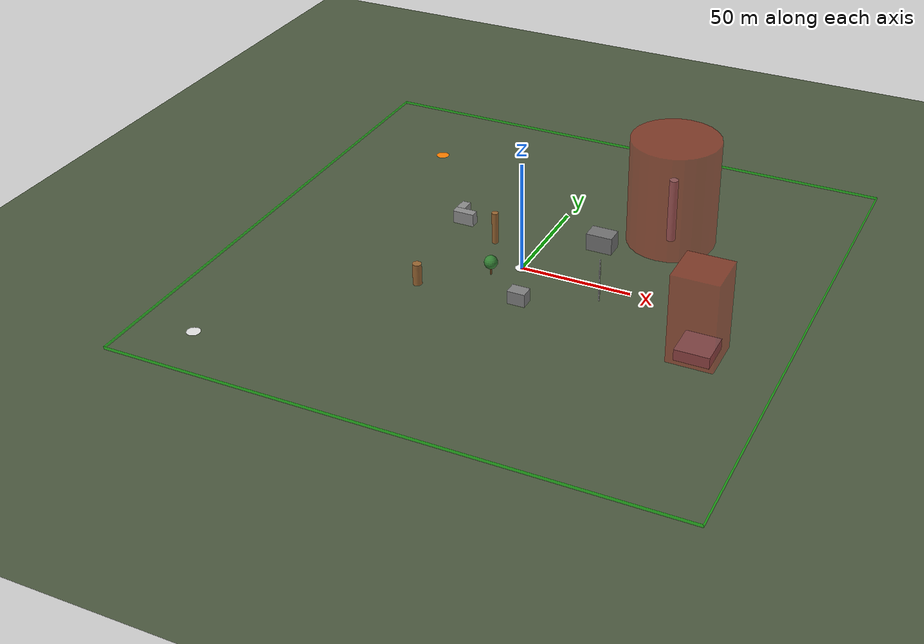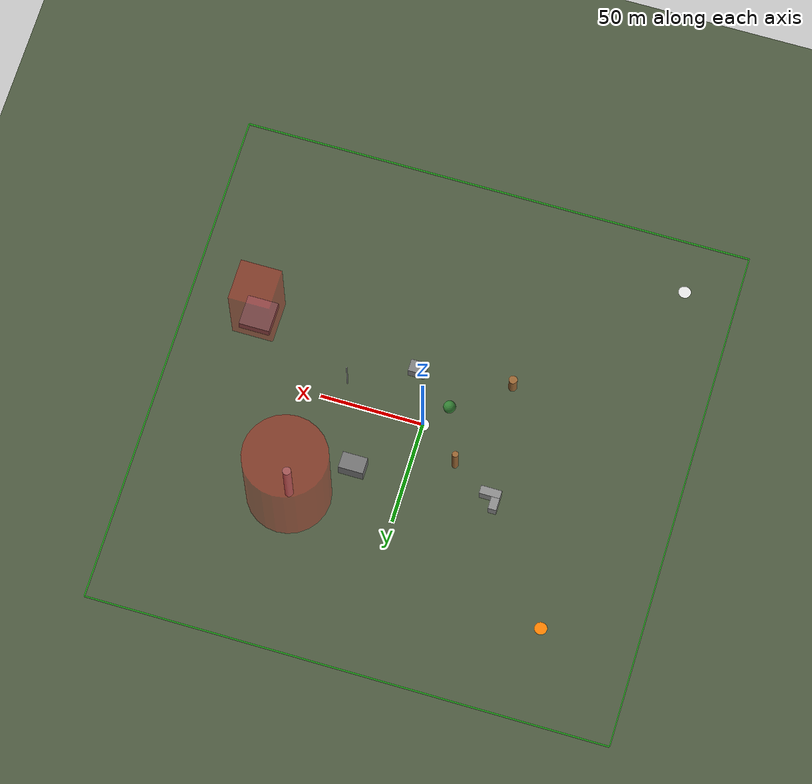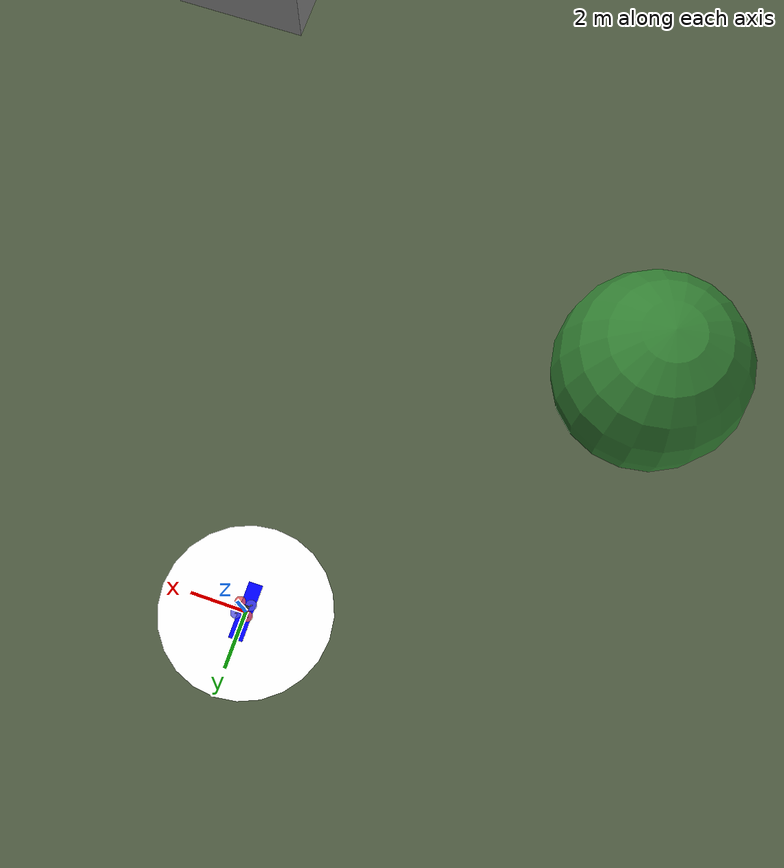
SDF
<?xml version="1.0" ?>
<sdf version="1.9">
  <world name="flyby_training">

    <!-- Physics optimized for training throughput -->
    <physics name="training_physics" type="ode">
      <max_step_size>0.001</max_step_size>
      <real_time_factor>1.0</real_time_factor>
      <real_time_update_rate>1000</real_time_update_rate>
      <ode>
        <solver>
          <type>quick</type>
          <iters>50</iters>
          <sor>1.3</sor>
        </solver>
        <constraints>
          <cfm>0.0</cfm>
          <erp>0.2</erp>
        </constraints>
      </ode>
    </physics>

    <!-- Plugins -->
    <plugin filename="gz-sim-physics-system" name="gz::sim::systems::Physics"/>
    <plugin filename="gz-sim-sensors-system" name="gz::sim::systems::Sensors">
      <render_engine>ogre2</render_engine>
    </plugin>
    <plugin filename="gz-sim-scene-broadcaster-system" name="gz::sim::systems::SceneBroadcaster"/>
    <plugin filename="gz-sim-user-commands-system" name="gz::sim::systems::UserCommands"/>
    <plugin filename="gz-sim-imu-system" name="gz::sim::systems::Imu"/>
    <plugin filename="gz-sim-air-pressure-system" name="gz::sim::systems::AirPressure"/>
    <plugin filename="gz-sim-magnetometer-system" name="gz::sim::systems::Magnetometer"/>
    <plugin filename="gz-sim-navsat-system" name="gz::sim::systems::NavSat"/>

    <!-- Atmosphere -->
    <atmosphere type="adiabatic">
      <temperature>288.15</temperature>
      <pressure>101325</pressure>
      <!-- mass_density is computed from temperature/pressure for adiabatic atmospheres -->
    </atmosphere>

    <!-- Spherical coordinates for GPS simulation -->
    <!-- Location: Camp Pendleton area (typical MCTSSA operations) -->
    <spherical_coordinates>
      <surface_model>EARTH_WGS84</surface_model>
      <world_frame_orientation>ENU</world_frame_orientation>
      <latitude_deg>33.3853</latitude_deg>
      <longitude_deg>-117.5653</longitude_deg>
      <elevation>100</elevation>
      <heading_deg>0</heading_deg>
    </spherical_coordinates>

    <!-- Lighting -->
    <light type="directional" name="sun">
      <cast_shadows>true</cast_shadows>
      <pose>0 0 100 0 0 0</pose>
      <diffuse>0.8 0.8 0.8 1</diffuse>
      <specular>0.2 0.2 0.2 1</specular>
      <attenuation>
        <range>1000</range>
        <constant>0.9</constant>
        <linear>0.01</linear>
        <quadratic>0.001</quadratic>
      </attenuation>
      <direction>-0.5 0.1 -0.9</direction>
    </light>

    <!-- GROUND PLANE                                 -->
    <model name="ground_plane">
      <static>true</static>
      <link name="link">
        <collision name="collision">
          <geometry>
            <plane>
              <normal>0 0 1</normal>
              <size>500 500</size>
            </plane>
          </geometry>
          <surface>
            <friction>
              <ode>
                <mu>100</mu>
                <mu2>50</mu2>
              </ode>
            </friction>
          </surface>
        </collision>
        <visual name="visual">
          <geometry>
            <plane>
              <normal>0 0 1</normal>
              <size>500 500</size>
            </plane>
          </geometry>
          <material>
            <ambient>0.3 0.35 0.25 1</ambient>
            <diffuse>0.3 0.35 0.25 1</diffuse>
          </material>
        </visual>
      </link>
    </model>

    <!-- GEOFENCE BOUNDARY MARKERS (250m x 250m)      -->
    <!-- Visual markers only - enforcement via ontology -->

    <!-- North boundary -->
    <model name="geofence_north">
      <static>true</static>
      <pose>0 125 0.5 0 0 0</pose>
      <link name="link">
        <visual name="visual">
          <geometry>
            <box><size>250 0.5 1</size></box>
          </geometry>
          <material>
            <ambient>0 1 0 0.5</ambient>
            <diffuse>0 1 0 0.5</diffuse>
          </material>
        </visual>
      </link>
    </model>

    <!-- South boundary -->
    <model name="geofence_south">
      <static>true</static>
      <pose>0 -125 0.5 0 0 0</pose>
      <link name="link">
        <visual name="visual">
          <geometry>
            <box><size>250 0.5 1</size></box>
          </geometry>
          <material>
            <ambient>0 1 0 0.5</ambient>
            <diffuse>0 1 0 0.5</diffuse>
          </material>
        </visual>
      </link>
    </model>

    <!-- East boundary -->
    <model name="geofence_east">
      <static>true</static>
      <pose>125 0 0.5 0 0 0</pose>
      <link name="link">
        <visual name="visual">
          <geometry>
            <box><size>0.5 250 1</size></box>
          </geometry>
          <material>
            <ambient>0 1 0 0.5</ambient>
            <diffuse>0 1 0 0.5</diffuse>
          </material>
        </visual>
      </link>
    </model>

    <!-- West boundary -->
    <model name="geofence_west">
      <static>true</static>
      <pose>-125 0 0.5 0 0 0</pose>
      <link name="link">
        <visual name="visual">
          <geometry>
            <box><size>0.5 250 1</size></box>
          </geometry>
          <material>
            <ambient>0 1 0 0.5</ambient>
            <diffuse>0 1 0 0.5</diffuse>
          </material>
        </visual>
      </link>
    </model>

    <!-- NO-FLY ZONE 1: Cylindrical (Tower/Building) -->
    <!-- Center: (50, 50), Radius: 20m, Height: 50m   -->
    <model name="nfz_1_cylinder">
      <static>true</static>
      <pose>50 50 25 0 0 0</pose>
      <link name="link">
        <!-- Visual representation (red translucent) -->
        <visual name="visual">
          <geometry>
            <cylinder>
              <radius>20</radius>
              <length>50</length>
            </cylinder>
          </geometry>
          <material>
            <ambient>1 0 0 0.3</ambient>
            <diffuse>1 0 0 0.3</diffuse>
          </material>
        </visual>
        <!-- Small collision marker at base (for reference) -->
        <collision name="base_marker">
          <pose>0 0 -24.5 0 0 0</pose>
          <geometry>
            <cylinder>
              <radius>20</radius>
              <length>1</length>
            </cylinder>
          </geometry>
        </collision>
      </link>
    </model>

    <!-- NFZ 1 center marker (tower) -->
    <model name="nfz_1_tower">
      <static>true</static>
      <pose>50 50 15 0 0 0</pose>
      <link name="link">
        <visual name="visual">
          <geometry>
            <cylinder>
              <radius>2</radius>
              <length>30</length>
            </cylinder>
          </geometry>
          <material>
            <ambient>0.5 0.5 0.5 1</ambient>
            <diffuse>0.5 0.5 0.5 1</diffuse>
          </material>
        </visual>
        <collision name="collision">
          <geometry>
            <cylinder>
              <radius>2</radius>
              <length>30</length>
            </cylinder>
          </geometry>
        </collision>
      </link>
    </model>

    <!-- NO-FLY ZONE 2: Rectangular (Restricted Area) -->
    <!-- Bounds: (80, -40) to (100, -20), Height: 40m  -->
    <model name="nfz_2_box">
      <static>true</static>
      <pose>90 -30 20 0 0 0</pose>
      <link name="link">
        <!-- Visual representation (red translucent) -->
        <visual name="visual">
          <geometry>
            <box><size>20 20 40</size></box>
          </geometry>
          <material>
            <ambient>1 0 0 0.3</ambient>
            <diffuse>1 0 0 0.3</diffuse>
          </material>
        </visual>
        <!-- Ground marker -->
        <collision name="ground_marker">
          <pose>0 0 -19.5 0 0 0</pose>
          <geometry>
            <box><size>20 20 1</size></box>
          </geometry>
        </collision>
      </link>
    </model>

    <!-- NFZ 2 ground facility -->
    <model name="nfz_2_facility">
      <static>true</static>
      <pose>90 -30 2.5 0 0 0</pose>
      <link name="link">
        <visual name="visual">
          <geometry>
            <box><size>15 15 5</size></box>
          </geometry>
          <material>
            <ambient>0.4 0.4 0.4 1</ambient>
            <diffuse>0.4 0.4 0.4 1</diffuse>
          </material>
        </visual>
        <collision name="collision">
          <geometry>
            <box><size>15 15 5</size></box>
          </geometry>
        </collision>
      </link>
    </model>

    <!-- OBSTACLE FIELD: Training obstacles           -->
    <!-- Scattered in region (-50, -50) to (50, 50)   -->

    <!-- Obstacle 1: Tall pillar -->
    <model name="obstacle_pillar_1">
      <static>true</static>
      <pose>-20 15 7.5 0 0 0</pose>
      <link name="link">
        <visual name="visual">
          <geometry>
            <cylinder>
              <radius>1.5</radius>
              <length>15</length>
            </cylinder>
          </geometry>
          <material>
            <ambient>0.6 0.4 0.2 1</ambient>
            <diffuse>0.6 0.4 0.2 1</diffuse>
          </material>
        </visual>
        <collision name="collision">
          <geometry>
            <cylinder>
              <radius>1.5</radius>
              <length>15</length>
            </cylinder>
          </geometry>
        </collision>
      </link>
    </model>

    <!-- Obstacle 2: Low building -->
    <model name="obstacle_building_1">
      <static>true</static>
      <pose>10 -25 3 0 0 0</pose>
      <link name="link">
        <visual name="visual">
          <geometry>
            <box><size>8 6 6</size></box>
          </geometry>
          <material>
            <ambient>0.5 0.5 0.5 1</ambient>
            <diffuse>0.5 0.5 0.5 1</diffuse>
          </material>
        </visual>
        <collision name="collision">
          <geometry>
            <box><size>8 6 6</size></box>
          </geometry>
        </collision>
      </link>
    </model>

    <!-- Obstacle 3: Medium pillar -->
    <model name="obstacle_pillar_2">
      <static>true</static>
      <pose>-35 -30 5 0 0 0</pose>
      <link name="link">
        <visual name="visual">
          <geometry>
            <cylinder>
              <radius>2</radius>
              <length>10</length>
            </cylinder>
          </geometry>
          <material>
            <ambient>0.6 0.4 0.2 1</ambient>
            <diffuse>0.6 0.4 0.2 1</diffuse>
          </material>
        </visual>
        <collision name="collision">
          <geometry>
            <cylinder>
              <radius>2</radius>
              <length>10</length>
            </cylinder>
          </geometry>
        </collision>
      </link>
    </model>

    <!-- Obstacle 4: Wide building -->
    <model name="obstacle_building_2">
      <static>true</static>
      <pose>25 30 4 0 0 0</pose>
      <link name="link">
        <visual name="visual">
          <geometry>
            <box><size>12 8 8</size></box>
          </geometry>
          <material>
            <ambient>0.45 0.45 0.45 1</ambient>
            <diffuse>0.45 0.45 0.45 1</diffuse>
          </material>
        </visual>
        <collision name="collision">
          <geometry>
            <box><size>12 8 8</size></box>
          </geometry>
        </collision>
      </link>
    </model>

    <!-- Obstacle 5: Tree-like obstacle -->
    <model name="obstacle_tree_1">
      <static>true</static>
      <pose>-10 -10 4 0 0 0</pose>
      <link name="link">
        <visual name="trunk">
          <pose>0 0 -2 0 0 0</pose>
          <geometry>
            <cylinder>
              <radius>0.5</radius>
              <length>4</length>
            </cylinder>
          </geometry>
          <material>
            <ambient>0.4 0.25 0.1 1</ambient>
            <diffuse>0.4 0.25 0.1 1</diffuse>
          </material>
        </visual>
        <visual name="canopy">
          <pose>0 0 2 0 0 0</pose>
          <geometry>
            <sphere><radius>3</radius></sphere>
          </geometry>
          <material>
            <ambient>0.2 0.5 0.2 1</ambient>
            <diffuse>0.2 0.5 0.2 1</diffuse>
          </material>
        </visual>
        <collision name="collision">
          <geometry>
            <cylinder>
              <radius>3</radius>
              <length>8</length>
            </cylinder>
          </geometry>
        </collision>
      </link>
    </model>

    <!-- Obstacle 6: Tall thin obstacle -->
    <model name="obstacle_pole_1">
      <static>true</static>
      <pose>40 -10 10 0 0 0</pose>
      <link name="link">
        <visual name="visual">
          <geometry>
            <cylinder>
              <radius>0.3</radius>
              <length>20</length>
            </cylinder>
          </geometry>
          <material>
            <ambient>0.7 0.7 0.7 1</ambient>
            <diffuse>0.7 0.7 0.7 1</diffuse>
          </material>
        </visual>
        <collision name="collision">
          <geometry>
            <cylinder>
              <radius>0.3</radius>
              <length>20</length>
            </cylinder>
          </geometry>
        </collision>
      </link>
    </model>

    <!-- Obstacle 7: L-shaped building -->
    <model name="obstacle_l_building">
      <static>true</static>
      <pose>-40 25 0 0 0 0</pose>
      <link name="link">
        <visual name="part_a">
          <pose>0 0 3 0 0 0</pose>
          <geometry>
            <box><size>10 4 6</size></box>
          </geometry>
          <material>
            <ambient>0.55 0.55 0.55 1</ambient>
            <diffuse>0.55 0.55 0.55 1</diffuse>
          </material>
        </visual>
        <visual name="part_b">
          <pose>-3 5 3 0 0 0</pose>
          <geometry>
            <box><size>4 6 6</size></box>
          </geometry>
          <material>
            <ambient>0.55 0.55 0.55 1</ambient>
            <diffuse>0.55 0.55 0.55 1</diffuse>
          </material>
        </visual>
        <collision name="collision_a">
          <pose>0 0 3 0 0 0</pose>
          <geometry>
            <box><size>10 4 6</size></box>
          </geometry>
        </collision>
        <collision name="collision_b">
          <pose>-3 5 3 0 0 0</pose>
          <geometry>
            <box><size>4 6 6</size></box>
          </geometry>
        </collision>
      </link>
    </model>

    <!-- LANDING ZONES                                -->

    <!-- Primary landing zone (origin) -->
    <model name="landing_zone_primary">
      <static>true</static>
      <pose>0 0 0.01 0 0 0</pose>
      <link name="link">
        <visual name="visual">
          <geometry>
            <cylinder>
              <radius>3</radius>
              <length>0.02</length>
            </cylinder>
          </geometry>
          <material>
            <ambient>1 1 1 1</ambient>
            <diffuse>1 1 1 1</diffuse>
          </material>
        </visual>
        <visual name="H_mark">
          <pose>0 0 0.01 0 0 0</pose>
          <geometry>
            <box><size>0.5 2 0.01</size></box>
          </geometry>
          <material>
            <ambient>0 0 1 1</ambient>
            <diffuse>0 0 1 1</diffuse>
          </material>
        </visual>
      </link>
    </model>

    <!-- Secondary landing zone (SW corner) -->
    <model name="landing_zone_secondary">
      <static>true</static>
      <pose>-100 -100 0.01 0 0 0</pose>
      <link name="link">
        <visual name="visual">
          <geometry>
            <cylinder>
              <radius>3</radius>
              <length>0.02</length>
            </cylinder>
          </geometry>
          <material>
            <ambient>0.9 0.9 0.9 1</ambient>
            <diffuse>0.9 0.9 0.9 1</diffuse>
          </material>
        </visual>
      </link>
    </model>

    <!-- Emergency landing zone (NE corner, away from NFZ) -->
    <model name="landing_zone_emergency">
      <static>true</static>
      <pose>-80 80 0.01 0 0 0</pose>
      <link name="link">
        <visual name="visual">
          <geometry>
            <cylinder>
              <radius>3</radius>
              <length>0.02</length>
            </cylinder>
          </geometry>
          <material>
            <ambient>1 0.5 0 1</ambient>
            <diffuse>1 0.5 0 1</diffuse>
          </material>
        </visual>
      </link>
    </model>

    <!-- Flyby F-11 with ISR Camera Payload -->
    <include>
      <uri>/simulation/models/f11_isr_camera</uri>
      <name>f11_isr</name>
      <pose>0 0 0.5 0 0 0</pose>

      <!-- Gimbal controllers - must be inside include to attach to model -->
      <!-- Gimbal Yaw Position Controller -->
      <plugin filename="gz-sim-joint-position-controller-system"
              name="gz::sim::systems::JointPositionController">
        <joint_name>gimbal_yaw_joint</joint_name>
        <topic>/f11_isr/gimbal/yaw</topic>
        <p_gain>10.0</p_gain>
        <i_gain>0.1</i_gain>
        <d_gain>0.5</d_gain>
        <i_max>1.0</i_max>
        <i_min>-1.0</i_min>
        <cmd_max>10.0</cmd_max>
        <cmd_min>-10.0</cmd_min>
      </plugin>

      <!-- Gimbal Pitch Position Controller -->
      <plugin filename="gz-sim-joint-position-controller-system"
              name="gz::sim::systems::JointPositionController">
        <joint_name>gimbal_pitch_joint</joint_name>
        <topic>/f11_isr/gimbal/pitch</topic>
        <p_gain>10.0</p_gain>
        <i_gain>0.1</i_gain>
        <d_gain>0.5</d_gain>
        <i_max>1.0</i_max>
        <i_min>-1.0</i_min>
        <cmd_max>10.0</cmd_max>
        <cmd_min>-10.0</cmd_min>
      </plugin>

      <!-- Gimbal Roll (Camera) Position Controller -->
      <plugin filename="gz-sim-joint-position-controller-system"
              name="gz::sim::systems::JointPositionController">
        <joint_name>camera_joint</joint_name>
        <topic>/f11_isr/gimbal/roll</topic>
        <p_gain>10.0</p_gain>
        <i_gain>0.1</i_gain>
        <d_gain>0.5</d_gain>
        <i_max>1.0</i_max>
        <i_min>-1.0</i_min>
        <cmd_max>10.0</cmd_max>
        <cmd_min>-10.0</cmd_min>
      </plugin>
    </include>

  </world>
</sdf>

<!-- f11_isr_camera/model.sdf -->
<sdf version="1.9">
  <model name="f11_isr_camera">
    <pose>0 0 0.25 0 0 0</pose>

    <!-- F-11 Base Link (Main Body) -->
    <link name="base_link">
      <inertial>
        <!-- Total mass: 4.5 kg base + 1.8 kg payload = 6.3 kg -->
        <mass>6.3</mass>
        <!-- CoG shifted down due to bottom-mounted payload -->
        <pose>0 0 -0.05 0 0 0</pose>
        <inertia>
          <!-- Adjusted inertia for heavier payload -->
          <ixx>0.115</ixx>
          <ixy>0</ixy>
          <ixz>0</ixz>
          <iyy>0.115</iyy>
          <iyz>0</iyz>
          <izz>0.175</izz>
        </inertia>
      </inertial>

      <!-- Main body visual - central frame -->
      <visual name="body_visual">
        <geometry>
          <box>
            <size>0.30 0.30 0.12</size>
          </box>
        </geometry>
        <material>
          <ambient>0.1 0.1 0.1 1</ambient>
          <diffuse>0.15 0.15 0.15 1</diffuse>
          <specular>0.3 0.3 0.3 1</specular>
        </material>
      </visual>

      <!-- Battery bay visual -->
      <visual name="battery_visual">
        <pose>0 0 -0.04 0 0 0</pose>
        <geometry>
          <box>
            <size>0.18 0.12 0.06</size>
          </box>
        </geometry>
        <material>
          <ambient>0.2 0.2 0.25 1</ambient>
          <diffuse>0.25 0.25 0.3 1</diffuse>
        </material>
      </visual>

      <!-- Jetson Orin NX housing visual -->
      <visual name="compute_visual">
        <pose>0 0 0.08 0 0 0</pose>
        <geometry>
          <box>
            <size>0.10 0.08 0.04</size>
          </box>
        </geometry>
        <material>
          <ambient>0.0 0.4 0.0 1</ambient>
          <diffuse>0.0 0.5 0.0 1</diffuse>
        </material>
      </visual>

      <!-- Front marker for orientation (green) -->
      <visual name="front_marker">
        <pose>0.12 0 0.06 0 0 0</pose>
        <geometry>
          <sphere>
            <radius>0.03</radius>
          </sphere>
        </geometry>
        <material>
          <ambient>0 1 0 1</ambient>
          <diffuse>0 1 0 1</diffuse>
        </material>
      </visual>

      <!-- Arms visual representation -->
      <visual name="arm_fr_visual">
        <pose>0.1375 -0.1375 0 0 0 -0.785398</pose>
        <geometry>
          <box>
            <size>0.25 0.04 0.03</size>
          </box>
        </geometry>
        <material>
          <ambient>0.15 0.15 0.15 1</ambient>
          <diffuse>0.2 0.2 0.2 1</diffuse>
        </material>
      </visual>

      <visual name="arm_fl_visual">
        <pose>0.1375 0.1375 0 0 0 0.785398</pose>
        <geometry>
          <box>
            <size>0.25 0.04 0.03</size>
          </box>
        </geometry>
        <material>
          <ambient>0.15 0.15 0.15 1</ambient>
          <diffuse>0.2 0.2 0.2 1</diffuse>
        </material>
      </visual>

      <visual name="arm_br_visual">
        <pose>-0.1375 -0.1375 0 0 0 0.785398</pose>
        <geometry>
          <box>
            <size>0.25 0.04 0.03</size>
          </box>
        </geometry>
        <material>
          <ambient>0.15 0.15 0.15 1</ambient>
          <diffuse>0.2 0.2 0.2 1</diffuse>
        </material>
      </visual>

      <visual name="arm_bl_visual">
        <pose>-0.1375 0.1375 0 0 0 -0.785398</pose>
        <geometry>
          <box>
            <size>0.25 0.04 0.03</size>
          </box>
        </geometry>
        <material>
          <ambient>0.15 0.15 0.15 1</ambient>
          <diffuse>0.2 0.2 0.2 1</diffuse>
        </material>
      </visual>

      <collision name="body_collision">
        <geometry>
          <box>
            <size>0.55 0.55 0.15</size>
          </box>
        </geometry>
      </collision>
    </link>

    <!-- Rotor 0 (Front Right - CW) -->
    <link name="rotor_0">
      <pose>0.195 -0.195 0.04 0 0 0</pose>
      <inertial>
        <mass>0.025</mass>
        <inertia>
          <ixx>1.0e-05</ixx>
          <ixy>0</ixy>
          <ixz>0</ixz>
          <iyy>5.0e-04</iyy>
          <iyz>0</iyz>
          <izz>5.0e-04</izz>
        </inertia>
      </inertial>
      <visual name="rotor_visual">
        <geometry>
          <cylinder>
            <radius>0.19</radius>
            <length>0.01</length>
          </cylinder>
        </geometry>
        <material>
          <ambient>0.8 0.2 0.2 0.8</ambient>
          <diffuse>0.9 0.3 0.3 0.8</diffuse>
        </material>
      </visual>
      <visual name="motor_visual">
        <pose>0 0 -0.015 0 0 0</pose>
        <geometry>
          <cylinder>
            <radius>0.025</radius>
            <length>0.04</length>
          </cylinder>
        </geometry>
        <material>
          <ambient>0.3 0.3 0.3 1</ambient>
          <diffuse>0.4 0.4 0.4 1</diffuse>
        </material>
      </visual>
    </link>

    <!-- Rotor 1 (Back Left - CW) -->
    <link name="rotor_1">
      <pose>-0.195 0.195 0.04 0 0 0</pose>
      <inertial>
        <mass>0.025</mass>
        <inertia>
          <ixx>1.0e-05</ixx>
          <ixy>0</ixy>
          <ixz>0</ixz>
          <iyy>5.0e-04</iyy>
          <iyz>0</iyz>
          <izz>5.0e-04</izz>
        </inertia>
      </inertial>
      <visual name="rotor_visual">
        <geometry>
          <cylinder>
            <radius>0.19</radius>
            <length>0.01</length>
          </cylinder>
        </geometry>
        <material>
          <ambient>0.8 0.2 0.2 0.8</ambient>
          <diffuse>0.9 0.3 0.3 0.8</diffuse>
        </material>
      </visual>
      <visual name="motor_visual">
        <pose>0 0 -0.015 0 0 0</pose>
        <geometry>
          <cylinder>
            <radius>0.025</radius>
            <length>0.04</length>
          </cylinder>
        </geometry>
        <material>
          <ambient>0.3 0.3 0.3 1</ambient>
          <diffuse>0.4 0.4 0.4 1</diffuse>
        </material>
      </visual>
    </link>

    <!-- Rotor 2 (Front Left - CCW) -->
    <link name="rotor_2">
      <pose>0.195 0.195 0.04 0 0 0</pose>
      <inertial>
        <mass>0.025</mass>
        <inertia>
          <ixx>1.0e-05</ixx>
          <ixy>0</ixy>
          <ixz>0</ixz>
          <iyy>5.0e-04</iyy>
          <iyz>0</iyz>
          <izz>5.0e-04</izz>
        </inertia>
      </inertial>
      <visual name="rotor_visual">
        <geometry>
          <cylinder>
            <radius>0.19</radius>
            <length>0.01</length>
          </cylinder>
        </geometry>
        <material>
          <ambient>0.2 0.2 0.8 0.8</ambient>
          <diffuse>0.3 0.3 0.9 0.8</diffuse>
        </material>
      </visual>
      <visual name="motor_visual">
        <pose>0 0 -0.015 0 0 0</pose>
        <geometry>
          <cylinder>
            <radius>0.025</radius>
            <length>0.04</length>
          </cylinder>
        </geometry>
        <material>
          <ambient>0.3 0.3 0.3 1</ambient>
          <diffuse>0.4 0.4 0.4 1</diffuse>
        </material>
      </visual>
    </link>

    <!-- Rotor 3 (Back Right - CCW) -->
    <link name="rotor_3">
      <pose>-0.195 -0.195 0.04 0 0 0</pose>
      <inertial>
        <mass>0.025</mass>
        <inertia>
          <ixx>1.0e-05</ixx>
          <ixy>0</ixy>
          <ixz>0</ixz>
          <iyy>5.0e-04</iyy>
          <iyz>0</iyz>
          <izz>5.0e-04</izz>
        </inertia>
      </inertial>
      <visual name="rotor_visual">
        <geometry>
          <cylinder>
            <radius>0.19</radius>
            <length>0.01</length>
          </cylinder>
        </geometry>
        <material>
          <ambient>0.2 0.2 0.8 0.8</ambient>
          <diffuse>0.3 0.3 0.9 0.8</diffuse>
        </material>
      </visual>
      <visual name="motor_visual">
        <pose>0 0 -0.015 0 0 0</pose>
        <geometry>
          <cylinder>
            <radius>0.025</radius>
            <length>0.04</length>
          </cylinder>
        </geometry>
        <material>
          <ambient>0.3 0.3 0.3 1</ambient>
          <diffuse>0.4 0.4 0.4 1</diffuse>
        </material>
      </visual>
    </link>

    <!-- Gimbal Mount Link -->
    <link name="gimbal_mount_link">
      <pose>0 0 -0.10 0 0 0</pose>
      <inertial>
        <mass>0.2</mass>
        <inertia>
          <ixx>0.0005</ixx>
          <ixy>0</ixy>
          <ixz>0</ixz>
          <iyy>0.0005</iyy>
          <iyz>0</iyz>
          <izz>0.0003</izz>
        </inertia>
      </inertial>
      <visual name="mount_visual">
        <geometry>
          <box>
            <size>0.08 0.08 0.03</size>
          </box>
        </geometry>
        <material>
          <ambient>0.3 0.3 0.3 1</ambient>
          <diffuse>0.4 0.4 0.4 1</diffuse>
        </material>
      </visual>
    </link>

    <!-- Gimbal Yaw Link -->
    <link name="gimbal_yaw_link">
      <pose>0 0 -0.13 0 0 0</pose>
      <inertial>
        <mass>0.3</mass>
        <inertia>
          <ixx>0.0008</ixx>
          <ixy>0</ixy>
          <ixz>0</ixz>
          <iyy>0.0008</iyy>
          <iyz>0</iyz>
          <izz>0.0005</izz>
        </inertia>
      </inertial>
      <visual name="yaw_visual">
        <geometry>
          <cylinder>
            <radius>0.04</radius>
            <length>0.05</length>
          </cylinder>
        </geometry>
        <material>
          <ambient>0.25 0.25 0.25 1</ambient>
          <diffuse>0.35 0.35 0.35 1</diffuse>
        </material>
      </visual>
    </link>

    <!-- Gimbal Pitch Link -->
    <link name="gimbal_pitch_link">
      <pose>0 0 -0.18 0 0 0</pose>
      <inertial>
        <mass>0.25</mass>
        <inertia>
          <ixx>0.0006</ixx>
          <ixy>0</ixy>
          <ixz>0</ixz>
          <iyy>0.0006</iyy>
          <iyz>0</iyz>
          <izz>0.0004</izz>
        </inertia>
      </inertial>
      <visual name="pitch_visual">
        <geometry>
          <box>
            <size>0.06 0.12 0.06</size>
          </box>
        </geometry>
        <material>
          <ambient>0.2 0.2 0.2 1</ambient>
          <diffuse>0.3 0.3 0.3 1</diffuse>
        </material>
      </visual>
    </link>

    <!-- Camera Link (Sony A7R) -->
    <link name="camera_link">
      <pose>0 0 -0.25 0 0.35 0</pose>
      <inertial>
        <mass>0.85</mass>
        <inertia>
          <ixx>0.002</ixx>
          <ixy>0</ixy>
          <ixz>0</ixz>
          <iyy>0.0015</iyy>
          <iyz>0</iyz>
          <izz>0.001</izz>
        </inertia>
      </inertial>
      <!-- Camera body -->
      <visual name="camera_body_visual">
        <geometry>
          <box>
            <size>0.127 0.094 0.048</size>
          </box>
        </geometry>
        <material>
          <ambient>0.1 0.1 0.1 1</ambient>
          <diffuse>0.15 0.15 0.15 1</diffuse>
        </material>
      </visual>
      <!-- Lens -->
      <visual name="lens_visual">
        <pose>0.06 0 0 0 1.5708 0</pose>
        <geometry>
          <cylinder>
            <radius>0.035</radius>
            <length>0.08</length>
          </cylinder>
        </geometry>
        <material>
          <ambient>0.05 0.05 0.05 1</ambient>
          <diffuse>0.1 0.1 0.1 1</diffuse>
        </material>
      </visual>
      <!-- Camera Sensor -->
      <sensor name="isr_camera" type="camera">
        <pose>0.10 0 0 0 0 0</pose>
        <camera>
          <horizontal_fov>1.047</horizontal_fov>
          <image>
            <width>1920</width>
            <height>1080</height>
            <format>R8G8B8</format>
          </image>
          <clip>
            <near>0.1</near>
            <far>1000</far>
          </clip>
          <noise>
            <type>gaussian</type>
            <mean>0</mean>
            <stddev>0.007</stddev>
          </noise>
        </camera>
        <always_on>1</always_on>
        <update_rate>30</update_rate>
        <visualize>true</visualize>
      </sensor>
    </link>

    <!-- Rotor joints -->
    <joint name="rotor_0_joint" type="revolute">
      <parent>base_link</parent>
      <child>rotor_0</child>
      <axis>
        <xyz>0 0 1</xyz>
        <limit>
          <lower>-1e16</lower>
          <upper>1e16</upper>
        </limit>
        <dynamics>
          <damping>0.004</damping>
        </dynamics>
      </axis>
    </joint>

    <joint name="rotor_1_joint" type="revolute">
      <parent>base_link</parent>
      <child>rotor_1</child>
      <axis>
        <xyz>0 0 1</xyz>
        <limit>
          <lower>-1e16</lower>
          <upper>1e16</upper>
        </limit>
        <dynamics>
          <damping>0.004</damping>
        </dynamics>
      </axis>
    </joint>

    <joint name="rotor_2_joint" type="revolute">
      <parent>base_link</parent>
      <child>rotor_2</child>
      <axis>
        <xyz>0 0 1</xyz>
        <limit>
          <lower>-1e16</lower>
          <upper>1e16</upper>
        </limit>
        <dynamics>
          <damping>0.004</damping>
        </dynamics>
      </axis>
    </joint>

    <joint name="rotor_3_joint" type="revolute">
      <parent>base_link</parent>
      <child>rotor_3</child>
      <axis>
        <xyz>0 0 1</xyz>
        <limit>
          <lower>-1e16</lower>
          <upper>1e16</upper>
        </limit>
        <dynamics>
          <damping>0.004</damping>
        </dynamics>
      </axis>
    </joint>

    <!-- Gimbal joints -->
    <joint name="gimbal_mount_joint" type="fixed">
      <parent>base_link</parent>
      <child>gimbal_mount_link</child>
    </joint>

    <joint name="gimbal_yaw_joint" type="revolute">
      <parent>gimbal_mount_link</parent>
      <child>gimbal_yaw_link</child>
      <axis>
        <xyz>0 0 1</xyz>
        <limit>
          <lower>-6.02</lower>
          <upper>6.02</upper>
        </limit>
        <dynamics>
          <damping>0.5</damping>
        </dynamics>
      </axis>
    </joint>

    <joint name="gimbal_pitch_joint" type="revolute">
      <parent>gimbal_yaw_link</parent>
      <child>gimbal_pitch_link</child>
      <axis>
        <xyz>0 1 0</xyz>
        <limit>
          <lower>-2.09</lower>
          <upper>2.09</upper>
        </limit>
        <dynamics>
          <damping>0.5</damping>
        </dynamics>
      </axis>
    </joint>

    <joint name="camera_joint" type="revolute">
      <parent>gimbal_pitch_link</parent>
      <child>camera_link</child>
      <axis>
        <xyz>1 0 0</xyz>
        <limit>
          <lower>-0.785</lower>
          <upper>0.785</upper>
        </limit>
        <dynamics>
          <damping>0.5</damping>
        </dynamics>
      </axis>
    </joint>

    <!-- IMU Sensor Link -->
    <link name="imu_link">
      <pose>0 0 0 0 0 0</pose>
      <inertial>
        <mass>0.015</mass>
        <inertia>
          <ixx>1e-05</ixx>
          <ixy>0</ixy>
          <ixz>0</ixz>
          <iyy>1e-05</iyy>
          <iyz>0</iyz>
          <izz>1e-05</izz>
        </inertia>
      </inertial>
      <sensor name="imu_sensor" type="imu">
        <always_on>1</always_on>
        <update_rate>250</update_rate>
        <imu>
          <angular_velocity>
            <x><noise type="gaussian"><mean>0</mean><stddev>0.009</stddev></noise></x>
            <y><noise type="gaussian"><mean>0</mean><stddev>0.009</stddev></noise></y>
            <z><noise type="gaussian"><mean>0</mean><stddev>0.009</stddev></noise></z>
          </angular_velocity>
          <linear_acceleration>
            <x><noise type="gaussian"><mean>0</mean><stddev>0.017</stddev></noise></x>
            <y><noise type="gaussian"><mean>0</mean><stddev>0.017</stddev></noise></y>
            <z><noise type="gaussian"><mean>0</mean><stddev>0.017</stddev></noise></z>
          </linear_acceleration>
        </imu>
      </sensor>
    </link>

    <joint name="imu_joint" type="fixed">
      <parent>base_link</parent>
      <child>imu_link</child>
    </joint>

    <!-- GPS Link -->
    <link name="gps_link">
      <pose>0 0 0.10 0 0 0</pose>
      <inertial>
        <mass>0.05</mass>
        <inertia>
          <ixx>1e-05</ixx>
          <ixy>0</ixy>
          <ixz>0</ixz>
          <iyy>1e-05</iyy>
          <iyz>0</iyz>
          <izz>1e-05</izz>
        </inertia>
      </inertial>
      <visual name="gps_visual">
        <geometry>
          <cylinder>
            <radius>0.03</radius>
            <length>0.015</length>
          </cylinder>
        </geometry>
        <material>
          <ambient>0.8 0.8 0.8 1</ambient>
          <diffuse>0.9 0.9 0.9 1</diffuse>
        </material>
      </visual>
      <sensor name="gps_sensor" type="navsat">
        <always_on>1</always_on>
        <update_rate>10</update_rate>
      </sensor>
    </link>

    <joint name="gps_joint" type="fixed">
      <parent>base_link</parent>
      <child>gps_link</child>
    </joint>

    <!-- Gimbal Yaw Position Controller -->
    <plugin filename="gz-sim-joint-position-controller-system"
            name="gz::sim::systems::JointPositionController">
      <joint_name>gimbal_yaw_joint</joint_name>
      <topic>/f11_isr/gimbal/yaw</topic>
      <p_gain>10.0</p_gain>
      <i_gain>0.1</i_gain>
      <d_gain>0.5</d_gain>
      <i_max>1.0</i_max>
      <i_min>-1.0</i_min>
      <cmd_max>10.0</cmd_max>
      <cmd_min>-10.0</cmd_min>
    </plugin>

    <!-- Gimbal Pitch Position Controller -->
    <plugin filename="gz-sim-joint-position-controller-system"
            name="gz::sim::systems::JointPositionController">
      <joint_name>gimbal_pitch_joint</joint_name>
      <topic>/f11_isr/gimbal/pitch</topic>
      <p_gain>10.0</p_gain>
      <i_gain>0.1</i_gain>
      <d_gain>0.5</d_gain>
      <i_max>1.0</i_max>
      <i_min>-1.0</i_min>
      <cmd_max>10.0</cmd_max>
      <cmd_min>-10.0</cmd_min>
    </plugin>

    <!-- Gimbal Roll (Camera) Position Controller -->
    <plugin filename="gz-sim-joint-position-controller-system"
            name="gz::sim::systems::JointPositionController">
      <joint_name>camera_joint</joint_name>
      <topic>/f11_isr/gimbal/roll</topic>
      <p_gain>10.0</p_gain>
      <i_gain>0.1</i_gain>
      <d_gain>0.5</d_gain>
      <i_max>1.0</i_max>
      <i_min>-1.0</i_min>
      <cmd_max>10.0</cmd_max>
      <cmd_min>-10.0</cmd_min>
    </plugin>

    <!-- ArduPilot Plugin -->
    <plugin filename="ArduPilotPlugin" name="ArduPilotPlugin">
      <fdm_addr>127.0.0.1</fdm_addr>
      <fdm_port_in>9002</fdm_port_in>
      <fdm_port_out>9003</fdm_port_out>

      <modelXYZToAirplaneXForwardZDown>0 0 0 3.141593 0 0</modelXYZToAirplaneXForwardZDown>
      <gazeboXYZToNED>0 0 0 3.141593 0 0</gazeboXYZToNED>
      <imuName>imu_link::imu_sensor</imuName>

      <!-- Motor 0: Front Right (CW) -->
      <control channel="0">
        <jointName>rotor_0_joint</jointName>
        <useForce>1</useForce>
        <multiplier>1400</multiplier>
        <offset>-0.5</offset>
        <servo_min>1000</servo_min>
        <servo_max>2000</servo_max>
        <type>VELOCITY</type>
        <p_gain>0.25</p_gain>
        <i_gain>0</i_gain>
        <d_gain>0</d_gain>
        <i_max>0</i_max>
        <i_min>0</i_min>
        <cmd_max>3.0</cmd_max>
        <cmd_min>-3.0</cmd_min>
      </control>

      <!-- Motor 1: Back Left (CW) -->
      <control channel="1">
        <jointName>rotor_1_joint</jointName>
        <useForce>1</useForce>
        <multiplier>1400</multiplier>
        <offset>-0.5</offset>
        <servo_min>1000</servo_min>
        <servo_max>2000</servo_max>
        <type>VELOCITY</type>
        <p_gain>0.25</p_gain>
        <i_gain>0</i_gain>
        <d_gain>0</d_gain>
        <i_max>0</i_max>
        <i_min>0</i_min>
        <cmd_max>3.0</cmd_max>
        <cmd_min>-3.0</cmd_min>
      </control>

      <!-- Motor 2: Front Left (CCW) -->
      <control channel="2">
        <jointName>rotor_2_joint</jointName>
        <useForce>1</useForce>
        <multiplier>1400</multiplier>
        <offset>-0.5</offset>
        <servo_min>1000</servo_min>
        <servo_max>2000</servo_max>
        <type>VELOCITY</type>
        <p_gain>0.25</p_gain>
        <i_gain>0</i_gain>
        <d_gain>0</d_gain>
        <i_max>0</i_max>
        <i_min>0</i_min>
        <cmd_max>3.0</cmd_max>
        <cmd_min>-3.0</cmd_min>
      </control>

      <!-- Motor 3: Back Right (CCW) -->
      <control channel="3">
        <jointName>rotor_3_joint</jointName>
        <useForce>1</useForce>
        <multiplier>1400</multiplier>
        <offset>-0.5</offset>
        <servo_min>1000</servo_min>
        <servo_max>2000</servo_max>
        <type>VELOCITY</type>
        <p_gain>0.25</p_gain>
        <i_gain>0</i_gain>
        <d_gain>0</d_gain>
        <i_max>0</i_max>
        <i_min>0</i_min>
        <cmd_max>3.0</cmd_max>
        <cmd_min>-3.0</cmd_min>
      </control>
    </plugin>

  </model>
</sdf>
